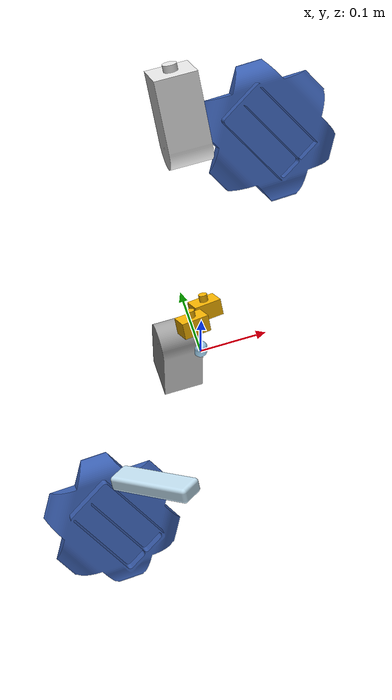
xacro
<?xml version="1.0"?>
<robot name="GS_arm"  xmlns:xacro= "http://www.ros.org/wiki/xacro">

  <xacro:property name="limlow" value="-3.4"/>
  <xacro:property name="limhigh" value="3.4"/>

<link name="part_1">
<visual>
<origin xyz="-0.04910700336525827131 -0.048580010032195260206 0.019651492183297165212" rpy="-1.5707963260270139116 -1.5707963241285023415 0" />
<geometry>
<mesh filename="file://$(find arm_description_pkg)/meshes/part_1.stl"/>
</geometry>
<material name="part_1_material">
<color rgba="0.61568627450980395466 0.81176470588235294379 0.92941176470588238168 1.0"/>
</material>
</visual>
<collision>
<origin xyz="-0.04910700336525827131 -0.048580010032195260206 0.019651492183297165212" rpy="-1.5707963260270139116 -1.5707963241285023415 0" />
<geometry>
<mesh filename="file://$(find arm_description_pkg)/meshes/part_1.stl"/>
</geometry>
</collision>
<inertial>
<origin xyz="-0.00040925370406562458806 0.00033173273479635001504 0.0087370865662881585373" rpy="0 0 0"/>
<mass value="0.006573023007839362726" />
<inertia ixx="3.4254629420184510254e-07" ixy="-6.1683605638088372916e-25"  ixz="-2.2949361586760868395e-17" iyy="3.4254629420184542017e-07" iyz="8.2666808706789062164e-17" izz="3.1037055368538326067e-07" />
</inertial>
</link>

<link name="part_2">
<visual>
<origin xyz="0.048859453325366328236 0.0029999999999999996288 0.056093852816584924281" rpy="4.0399032718099006475e-26 -5.2816658575524032903e-25 -7.8323145736917558873e-26" />
<geometry>
<mesh filename="file://$(find arm_description_pkg)/meshes/part_2.stl"/>
</geometry>
<material name="part_2_material">
<color rgba="0.64705882352941179736 0.64705882352941179736 0.64705882352941179736 1.0"/>
</material>
</visual>
<collision>
<origin xyz="0.048859453325366328236 0.0029999999999999996288 0.056093852816584924281" rpy="4.0399032718099006475e-26 -5.2816658575524032903e-25 -7.8323145736917558873e-26" />
<geometry>
<mesh filename="file://$(find arm_description_pkg)/meshes/part_2.stl"/>
</geometry>
</collision>
<inertial>
<origin xyz="6.215245124119305263e-10 -1.7347234696298535404e-18 -0.0062870999215605821719" rpy="0 0 0"/>
<mass value="0.00039216508755759201931" />
<inertia ixx="6.4285143472704544266e-09" ixy="-2.8053211617079956656e-15"  ixz="-2.0325159501443300711e-15" iyy="6.5484390549443102828e-09" iyz="1.9333278714826055754e-34" izz="1.7628285759493892712e-09" />
</inertial>
</link>

<link name="arm_l2">
<visual>
<origin xyz="-0.048859453325366480891 0.068093852816586336596 0.0059999999999997511921" rpy="1.5707963267949034414 -9.7144514674857918702e-15 3.141592653589793116" />
<geometry>
<mesh filename="file://$(find arm_description_pkg)/meshes/part_3.stl"/>
</geometry>
<material name="part_3_material">
<color rgba="0.2313725490196078538 0.38039215686274507888 0.7058823529411765163 1.0"/>
</material>
</visual>
<collision>
<origin xyz="-0.048859453325366480891 0.068093852816586336596 0.0059999999999997511921" rpy="1.5707963267949034414 -9.7144514674857918702e-15 3.141592653589793116" />
<geometry>
<mesh filename="file://$(find arm_description_pkg)/meshes/part_3.stl"/>
</geometry>
</collision>
<visual>
<origin xyz="0.048859453325366328236 0.068093852816584934939 0" rpy="-1.570796326794896558 -7.2829913884279140146e-27 5.2832357482394874954e-17" />
<geometry>
<mesh filename="file://$(find arm_description_pkg)/meshes/part_3.stl"/>
</geometry>
<material name="part_3_material">
<color rgba="0.2313725490196078538 0.38039215686274507888 0.7058823529411765163 1.0"/>
</material>
</visual>
<collision>
<origin xyz="0.048859453325366328236 0.068093852816584934939 0" rpy="-1.570796326794896558 -7.2829913884279140146e-27 5.2832357482394874954e-17" />
<geometry>
<mesh filename="file://$(find arm_description_pkg)/meshes/part_3.stl"/>
</geometry>
</collision>
<inertial>
<origin xyz="6.9388939037872537273e-17 -0.019072619004296208212 0.0029999999999999319746" rpy="0 0 0"/>
<mass value="0.0015763467425403791811" />
<inertia ixx="2.4386725160661461595e-07" ixy="2.4901284308402326939e-23"  ixz="-1.4213516358953332778e-15" iyy="3.5047571511437437541e-08" iyz="-8.1715750997435778484e-22" izz="2.1899899793860176514e-07" />
</inertial>
</link>

<link name="part_4">
<visual>
<origin xyz="0.048859453325366314358 -0.10580344317460763093 -3.5999999999999140327e-05" rpy="1.570796326794896558 -1.0772117594941155003e-25 -4.6914379226342727305e-18" />
<geometry>
<mesh filename="file://$(find arm_description_pkg)/meshes/part_4.stl"/>
</geometry>
<material name="part_4_material">
<color rgba="0.91764705882352937127 0.91764705882352937127 0.91764705882352937127 1.0"/>
</material>
</visual>
<collision>
<origin xyz="0.048859453325366314358 -0.10580344317460763093 -3.5999999999999140327e-05" rpy="1.570796326794896558 -1.0772117594941155003e-25 -4.6914379226342727305e-18" />
<geometry>
<mesh filename="file://$(find arm_description_pkg)/meshes/part_4.stl"/>
</geometry>
</collision>
<inertial>
<origin xyz="-2.5964347338813809074e-10 0.0059506274539454784289 -0.0030359999999999992028" rpy="0 0 0"/>
<mass value="0.0004391145489879284651" />
<inertia ixx="8.4064181992739358642e-09" ixy="2.0311123927716528783e-15"  ixz="6.6104554151935554773e-16" iyy="1.9494250132639217898e-09" iyz="-3.956802695660583404e-33" izz="8.5087706342363404576e-09" />
</inertial>
</link>

<link name="part_5">
<visual>
<origin xyz="0.048859453325366335175 0.0029999999999999974604 0.11963971922331256836" rpy="3.6777585056142152379e-18 -4.6527595579517413716e-17 -5.9186525231026205526e-18" />
<geometry>
<mesh filename="file://$(find arm_description_pkg)/meshes/part_5.stl"/>
</geometry>
<material name="part_5_material">
<color rgba="0.76862745098039220171 0.88627450980392152857 0.95294117647058818044 1.0"/>
</material>
</visual>
<collision>
<origin xyz="0.048859453325366335175 0.0029999999999999974604 0.11963971922331256836" rpy="3.6777585056142152379e-18 -4.6527595579517413716e-17 -5.9186525231026205526e-18" />
<geometry>
<mesh filename="file://$(find arm_description_pkg)/meshes/part_5.stl"/>
</geometry>
</collision>
<inertial>
<origin xyz="6.9388939039072283776e-18 2.5366670396291490164e-09 -0.0092615459733133027181" rpy="0 0 0"/>
<mass value="0.00041383713507877446184" />
<inertia ixx="1.2335222904467039203e-08" ixy="-6.799502945966000754e-26"  ixz="6.1850297472030453251e-25" iyy="1.2304438438045864217e-08" iyz="7.6863903660287903679e-15" izz="1.2824085971445473879e-09" />
</inertial>
</link>

<link name="arm_endvec">
<visual>
<origin xyz="0.032241423967343758872 0.057870514689953841958 -0.00099999999999999394928" rpy="-1.570796326794896558 9.6593088173496922144e-18 8.4176373614197601358e-18" />
<geometry>
<mesh filename="file://$(find arm_description_pkg)/meshes/part_8.stl"/>
</geometry>
<material name="part_8_material">
<color rgba="0.98039215686274505668 0.71372549019607844922 0.0039215686274509803377 1.0"/>
</material>
</visual>
<collision>
<origin xyz="0.032241423967343758872 0.057870514689953841958 -0.00099999999999999394928" rpy="-1.570796326794896558 9.6593088173496922144e-18 8.4176373614197601358e-18" />
<geometry>
<mesh filename="file://$(find arm_description_pkg)/meshes/part_8.stl"/>
</geometry>
</collision>
<visual>
<origin xyz="0.032241423967343779688 -0.052963864548872585658 0.0060000000000001926792" rpy="1.57079632679489678 -1.2230733206368237654e-17 1.7267348417151081348e-17" />
<geometry>
<mesh filename="file://$(find arm_description_pkg)/meshes/part_10.stl"/>
</geometry>
<material name="part_10_material">
<color rgba="0.64705882352941179736 0.64705882352941179736 0.64705882352941179736 1.0"/>
</material>
</visual>
<collision>
<origin xyz="0.032241423967343779688 -0.052963864548872585658 0.0060000000000001926792" rpy="1.57079632679489678 -1.2230733206368237654e-17 1.7267348417151081348e-17" />
<geometry>
<mesh filename="file://$(find arm_description_pkg)/meshes/part_10.stl"/>
</geometry>
</collision>
<visual>
<origin xyz="-0.032241423967344640111 0.057870514689955618315 0.0059999999999999498179" rpy="1.5707963267949009989 4.0682459268865843569e-18 -3.141592653589793116" />
<geometry>
<mesh filename="file://$(find arm_description_pkg)/meshes/part_8.stl"/>
</geometry>
<material name="part_8_material">
<color rgba="0.98039215686274505668 0.71372549019607844922 0.0039215686274509803377 1.0"/>
</material>
</visual>
<collision>
<origin xyz="-0.032241423967344640111 0.057870514689955618315 0.0059999999999999498179" rpy="1.5707963267949009989 4.0682459268865843569e-18 -3.141592653589793116" />
<geometry>
<mesh filename="file://$(find arm_description_pkg)/meshes/part_8.stl"/>
</geometry>
</collision>
<inertial>
<origin xyz="-1.1361681339843615489e-17 0.0015842633600372474454 0.0048273811403184881119" rpy="0 0 0"/>
<mass value="8.5366875729040575787e-05" />
<inertia ixx="1.1445972306816553719e-09" ixy="-5.2792863965823356029e-25"  ixz="1.9706467671457961893e-24" iyy="9.925582382281668758e-10" iyz="9.1302598556563587588e-11" izz="3.0166740426774660711e-10" />
</inertial>
</link>

<link name="part_9">
<visual>
<origin xyz="0.032241423967343765811 -0.05787051468995382808 0.00099999999999999394928" rpy="1.570796326794896558 -2.780614794904396428e-17 3.2084063177657466013e-18" />
<geometry>
<mesh filename="file://$(find arm_description_pkg)/meshes/part_9.stl"/>
</geometry>
<material name="part_9_material">
<color rgba="0.61568627450980395466 0.81176470588235294379 0.92941176470588238168 1.0"/>
</material>
</visual>
<collision>
<origin xyz="0.032241423967343765811 -0.05787051468995382808 0.00099999999999999394928" rpy="1.570796326794896558 -2.780614794904396428e-17 3.2084063177657466013e-18" />
<geometry>
<mesh filename="file://$(find arm_description_pkg)/meshes/part_9.stl"/>
</geometry>
</collision>
<inertial>
<origin xyz="-0.001827778502575337638 0.0036316546605268747346 -0.0021681834033945596857" rpy="0 0 0"/>
<mass value="0.00014326580067568379928" />
<inertia ixx="1.5551384458104457859e-09" ixy="3.1638969266166242688e-10"  ixz="-8.4345463588649456724e-11" iyy="5.1125140077094546152e-10" iyz="1.7003605750121371037e-10" izz="1.5818254057325908649e-09" />
</inertial>
</link>

<joint name="joint62" type="revolute">
<origin xyz="8.6736173798840354721e-18 0.0039999999999999896749 0.0050000000000001501577" rpy="3.6989317647796961104e-16 9.6544237760437687954e-16 -1.5188841050849092327e-15" />
<parent link="arm_endvec" />
<child link="part_9" />
<axis xyz="0 0 1"/>
<limit effort="1" velocity="20" lower="${limlow}" upper="${limhigh}"/>
<joint_properties friction="0.0"/>
</joint>

<link name="part_9_2">
<visual>
<origin xyz="0.032241423967343751933 -0.057870514689953848897 0.00099999999999999394928" rpy="1.570796326794896558 2.3913450878113692354e-17 7.4659306411398371592e-18" />
<geometry>
<mesh filename="file://$(find arm_description_pkg)/meshes/part_9.stl"/>
</geometry>
<material name="part_9_material">
<color rgba="0.61568627450980395466 0.81176470588235294379 0.92941176470588238168 1.0"/>
</material>
</visual>
<collision>
<origin xyz="0.032241423967343751933 -0.057870514689953848897 0.00099999999999999394928" rpy="1.570796326794896558 2.3913450878113692354e-17 7.4659306411398371592e-18" />
<geometry>
<mesh filename="file://$(find arm_description_pkg)/meshes/part_9.stl"/>
</geometry>
</collision>
<inertial>
<origin xyz="-0.0018277785025753445769 0.0036316546605268530505 -0.0021681834033945557826" rpy="0 0 0"/>
<mass value="0.00014326580067568379928" />
<inertia ixx="1.5551384458104449587e-09" ixy="3.1638969266166237518e-10"  ixz="-8.4345463588649598896e-11" iyy="5.1125140077094546152e-10" iyz="1.7003605750121391717e-10" izz="1.5818254057325908649e-09" />
</inertial>
</link>

<joint name="joint61" type="revolute">
<origin xyz="-1.7347234759768070944e-18 0.0040000000000000035527 -6.9388939039072283776e-18" rpy="-3.1415926535897922278 4.0603929202504693162e-16 -3.141592653589793116" />
<parent link="arm_endvec" />
<child link="part_9_2" />
<axis xyz="0 0 1"/>
<limit effort="1" velocity="20" lower="${limlow}" upper="${limhigh}"/>
<joint_properties friction="0.0"/>
</joint>

<joint name="joint5" type="revolute">
<origin xyz="-0.0025300000000000183453 -1.7347234759768070944e-18 -0.018025706946078190462" rpy="-1.570796326794896558 -2.2428881371736324527e-15 -1.5707963267948970021" />
<parent link="part_5" />
<child link="arm_endvec" />
<axis xyz="0 0 1"/>
<limit effort="1" velocity="20" lower="${limlow}" upper="${limhigh}"/>
<joint_properties friction="0.0"/>
</joint>

<joint name="joint4" type="revolute">
<origin xyz="-1.3877787807814456755e-17 0.013836276048704923558 -0.0030360000000000000701" rpy="1.570796326794896558 0.18509475809465084084 -4.863413034647360364e-15" />
<parent link="part_4" />
<child link="part_5" />
<axis xyz="0 0 1"/>
<limit effort="1" velocity="20" lower="${limlow}" upper="${limhigh}"/>
<joint_properties friction="0.0"/>
</joint>

<joint name="joint3" type="revolute">
<origin xyz="0 -0.037709590358022723744 4.336808689942017736e-19" rpy="3.141592653589793116 1.6718184578836537737e-16 -1.3962634015955452949" />
<parent link="arm_l2" />
<child link="part_4" />
<axis xyz="0 0 1"/>
<limit effort="1" velocity="20" lower="${limlow}" upper="${limhigh}"/>
<joint_properties friction="0.0"/>
</joint>

<joint name="joint2" type="revolute">
<origin xyz="5.9089018400459991653e-18 -0.0030359999999999996365 -0.011999999999999989841" rpy="1.5707963267948978903 -0.69813170079781894373 -3.1415926535897904515" />
<parent link="part_2" />
<child link="arm_l2" />
<axis xyz="0 0 1"/>
<limit effort="1" velocity="20" lower="${limlow}" upper="${limhigh}"/>
<joint_properties friction="0.0"/>
</joint>

<joint name="joint1" type="revolute">
<origin xyz="-0.00040925369628092445745 0.0003317327067547462538 0.019651492274228882229" rpy="-3.1415926528765427683 -2.5692277957900096269e-09 1.5707963275627829791" />
<parent link="part_1" />
<child link="part_2" />
<axis xyz="0 0 1"/>
<limit effort="1" velocity="20" lower="${limlow}" upper="${limhigh}"/>
<joint_properties friction="0.0"/>
</joint>

<link name="world"/>

  <joint name="joint_0" type="fixed">
    <parent link="world"/>
    <child link="part_1"/>
  </joint>

</robot>
